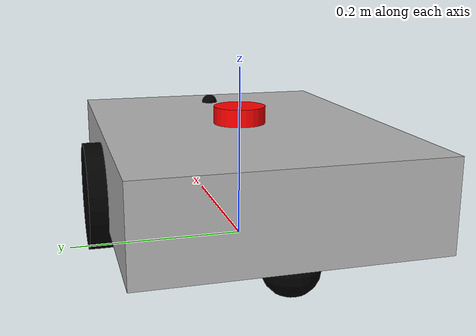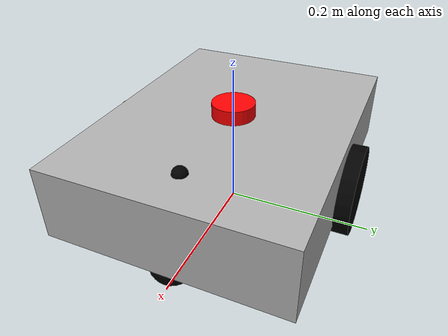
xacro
<?xml version="1.0"?>
<robot xmlns:xacro="http://www.ros.org/wiki/xacro" name="mapping_car">

    <material name="grey"><color rgba="0.7 0.7 0.7 1"/></material>
    <material name="black"><color rgba="0 0 0 1"/></material>
    <material name="red"><color rgba="1 0 0 1"/></material>

    <!-- ================= 基础坐标系 ================= -->
    <link name="base_footprint"/>
    <joint name="base_joint" type="fixed">
        <parent link="base_footprint"/>
        <child link="base_link"/>
        <origin xyz="0 0 0.085" rpy="0 0 0"/>
    </joint>

    <!-- ================= 底盘 ================= -->
    <link name="base_link">
        <visual>
            <geometry><box size="0.42 0.32 0.10"/></geometry>
            <material name="grey"/>
        </visual>
        <collision>
            <geometry><box size="0.42 0.32 0.10"/></geometry>
        </collision>
        <inertial>
            <!-- 加重底盘，重心更稳，抑制高频震动 -->
            <mass value="5.0"/>
            <inertia ixx="0.0468" ixy="0" ixz="0" iyy="0.0775" iyz="0" izz="0.1166"/>
        </inertial>
    </link>

    <!-- 底盘防刮地 -->
    <gazebo reference="base_link">
        <mu1>0.0</mu1><mu2>0.0</mu2>
    </gazebo>

    <!-- ================= 驱动轮宏定义 ================= -->
    <xacro:macro name="drive_wheel" params="prefix y_ref">
        <link name="${prefix}_wheel_link">
            <visual>
                <geometry><cylinder radius="0.06" length="0.04"/></geometry>
                <material name="black"/>
                <origin xyz="0 0 0" rpy="1.5707 0 0"/>
            </visual>
            <collision>
                <geometry><cylinder radius="0.06" length="0.04"/></geometry>
                <origin xyz="0 0 0" rpy="1.5707 0 0"/>
            </collision>
            <inertial>
                <mass value="0.5"/>
                <inertia ixx="0.00045" ixy="0" ixz="0" iyy="0.00045" iyz="0" izz="0.0009"/>
            </inertial>
        </link>

        <joint name="${prefix}_wheel_joint" type="continuous">
            <parent link="base_link"/>
            <child link="${prefix}_wheel_link"/>
            <origin xyz="0 ${y_ref} -0.025" rpy="0 0 0"/>
            <axis xyz="0 1 0"/>
            <limit effort="50.0" velocity="20.0"/>
        </joint>

        <!-- 【核心修改】回归黄金标准接触参数，保证真实滚动，绝不弹跳 -->
        <gazebo reference="${prefix}_wheel_link">
            <mu1>1.0</mu1>     <!-- 纵向抓地力拉满 -->
            <mu2>1.0</mu2>     <!-- 横向抓地力拉满，防侧滑打转 -->
            <kp>1000000.0</kp> <!-- 提升刚度，像真正的硬橡胶轮子 -->
            <kd>100.0</kd>
            <minDepth>0.001</minDepth>
            <maxVel>0.1</maxVel> <!-- 限制最大接触速度，消除高频震颤 -->
        </gazebo>
    </xacro:macro>

    <!-- 实例化左右驱动轮 (间距 0.16 * 2 = 0.32) -->
    <xacro:drive_wheel prefix="left"  y_ref="0.16" />
    <xacro:drive_wheel prefix="right" y_ref="-0.16" />

    <!-- ================= 前后万向支撑轮 ================= -->
    <xacro:macro name="caster_wheel" params="prefix x_ref">
        <link name="${prefix}_caster_link">
            <visual>
                <geometry><sphere radius="0.03"/></geometry>
                <material name="black"/>
            </visual>
            <collision>
                <geometry><sphere radius="0.03"/></geometry>
            </collision>
            <inertial>
                <mass value="0.1"/>
                <inertia ixx="1e-5" ixy="0" ixz="0" iyy="1e-5" iyz="0" izz="1e-5"/>
            </inertial>
        </link>

        <joint name="${prefix}_caster_joint" type="fixed">
            <parent link="base_link"/>
            <child link="${prefix}_caster_link"/>
            <origin xyz="${x_ref} 0 -0.055" rpy="0 0 0"/>
        </joint>

        <!-- 【核心修改】万向轮加一点点摩擦，不再是纯滑冰，防止原地打转 -->
        <gazebo reference="${prefix}_caster_link">
            <mu1>0.1</mu1>
            <mu2>0.1</mu2>
            <kp>1000000.0</kp>
            <kd>100.0</kd>
        </gazebo>
    </xacro:macro>

    <!-- 实例化前后万向轮 -->
    <xacro:caster_wheel prefix="front" x_ref="0.18" />
    <xacro:caster_wheel prefix="rear"  x_ref="-0.18" />

    <!-- ================= 2D 激光雷达 ================= -->
    <link name="laser_link">
        <visual>
            <geometry><cylinder radius="0.03" length="0.02"/></geometry>
            <material name="red"/>
        </visual>
        <inertial>
            <mass value="0.1"/>
            <inertia ixx="0.00002" ixy="0" ixz="0" iyy="0.00002" iyz="0" izz="0.00002"/>
        </inertial>
    </link>
    <joint name="laser_joint" type="fixed">
        <parent link="base_link"/>
        <child link="laser_link"/>
        <origin xyz="0 0 0.06" rpy="0 0 0"/>
    </joint>

    <gazebo reference="laser_link">
        <material>Gazebo/Red</material>
        <sensor type="ray" name="lidar3d_sensor">
            <update_rate>10</update_rate>
            <visualize>false</visualize>
            <ray>
                <scan>
                    <horizontal>
                        <samples>360</samples>
                        <min_angle>-3.14159</min_angle>
                        <max_angle>3.14159</max_angle>
                    </horizontal>
                </scan>
                <range><min>0.1</min><max>30.0</max></range>
            </ray>
            <plugin name="laser_controller" filename="libgazebo_ros_ray_sensor.so">
                <ros><remapping>~/out:=scan</remapping></ros>
                <output_type>sensor_msgs/LaserScan</output_type>
                <frame_name>laser_link</frame_name>
            </plugin>
        </sensor>
    </gazebo>

    <!-- ================= IMU ================= -->
    <link name="imu_link">
        <inertial>
            <mass value="0.01"/>
            <inertia ixx="1e-6" ixy="0" ixz="0" iyy="1e-6" iyz="0" izz="1e-6"/>
        </inertial>
    </link>
    <joint name="imu_joint" type="fixed">
        <parent link="base_link"/>
        <child link="imu_link"/>
        <origin xyz="0 0 0.02" rpy="0 0 0"/>
    </joint>
    <gazebo reference="imu_link">
        <sensor name="imu_sensor" type="imu">
            <always_on>true</always_on>
            <update_rate>250</update_rate>
            <imu>
                <angular_velocity>
                    <x><noise type="gaussian"><mean>0.0</mean><stddev>2e-4</stddev></noise></x>
                    <y><noise type="gaussian"><mean>0.0</mean><stddev>2e-4</stddev></noise></y>
                    <z><noise type="gaussian"><mean>0.0</mean><stddev>2e-4</stddev></noise></z>
                </angular_velocity>
                <linear_acceleration>
                    <x><noise type="gaussian"><mean>0.0</mean><stddev>1.7e-2</stddev></noise></x>
                    <y><noise type="gaussian"><mean>0.0</mean><stddev>1.7e-2</stddev></noise></y>
                    <z><noise type="gaussian"><mean>0.0</mean><stddev>1.7e-2</stddev></noise></z>
                </linear_acceleration>
            </imu>
            <plugin name="imu_plugin" filename="libgazebo_ros_imu_sensor.so">
                <ros><remapping>~/out:=imu</remapping></ros>
                <initial_orientation_as_reference>false</initial_orientation_as_reference>
                <frame_name>imu_link</frame_name>
            </plugin>
        </sensor>
    </gazebo>

    <!-- ================= 3. 超声波传感器 (模拟) ================= -->
    <link name="sonar_link">
        <visual>
            <geometry><sphere radius="0.01"/></geometry>
            <material name="black"/>
        </visual>
        <inertial>
            <mass value="0.05"/>
            <inertia ixx="1e-5" ixy="0" ixz="0" iyy="1e-5" iyz="0" izz="1e-5"/>
        </inertial>
    </link>
    <joint name="sonar_joint" type="fixed">
        <parent link="base_link"/>
        <child link="sonar_link"/>
        <!-- 安装在车头正前方，高度与雷达相同 -->
        <origin xyz="0.15 0 0.05" rpy="0 0 0"/>
    </joint>

    <gazebo reference="sonar_link">
        <sensor type="ray" name="sonar_sensor">
            <update_rate>20</update_rate>
            <visualize>true</visualize>
            <ray>
                <scan>
                    <horizontal>
                        <samples>1</samples> <!-- 超声波只有一根射线 -->
                        <min_angle>0</min_angle>
                        <max_angle>0</max_angle>
                    </horizontal>
                </scan>
                <range>
                    <min>0.02</min> <!-- 最小 2cm -->
                    <max>2.0</max>  <!-- 最大 2 米 -->
                </range>
            </ray>
            <plugin name="sonar_controller" filename="libgazebo_ros_ray_sensor.so">
                <ros>
                    <!-- 话题名为 /ultrasonic -->
                    <remapping>~/out:=ultrasonic</remapping>
                </ros>
                <output_type>sensor_msgs/LaserScan</output_type>
                <frame_name>sonar_link</frame_name>
            </plugin>
        </sensor>
    </gazebo>

    <!-- ================= 差速驱动 ================= -->
    <gazebo>
        <plugin name='diff_drive' filename='libgazebo_ros_diff_drive.so'>
            <command_topic>cmd_vel</command_topic>
            <odometry_topic>odom</odometry_topic>
            <ros><namespace>/</namespace></ros>
            <update_rate>50.0</update_rate>

            <!-- 【关键】严格单侧单关节 -->
            <left_joint>left_wheel_joint</left_joint>
            <right_joint>right_wheel_joint</right_joint>

            <wheel_separation>0.32</wheel_separation>
            <wheel_diameter>0.12</wheel_diameter>

            <!-- 强力电机，平滑加速 -->
            <max_wheel_torque>50.0</max_wheel_torque>
            <max_wheel_acceleration>2.0</max_wheel_acceleration>

            <publish_odom>true</publish_odom>
            <publish_odom_tf>true</publish_odom_tf>
            <publish_wheel_tf>false</publish_wheel_tf>
            <odometry_frame>odom</odometry_frame>
            <robot_base_frame>base_footprint</robot_base_frame>
        </plugin>
    </gazebo>

    <!-- ================= 关节状态发布 ================= -->
    <gazebo>
        <plugin name="joint_state_publisher" filename="libgazebo_ros_joint_state_publisher.so">
            <update_rate>50</update_rate>
            <joint_name>left_wheel_joint</joint_name>
            <joint_name>right_wheel_joint</joint_name>
        </plugin>
    </gazebo>

</robot>
